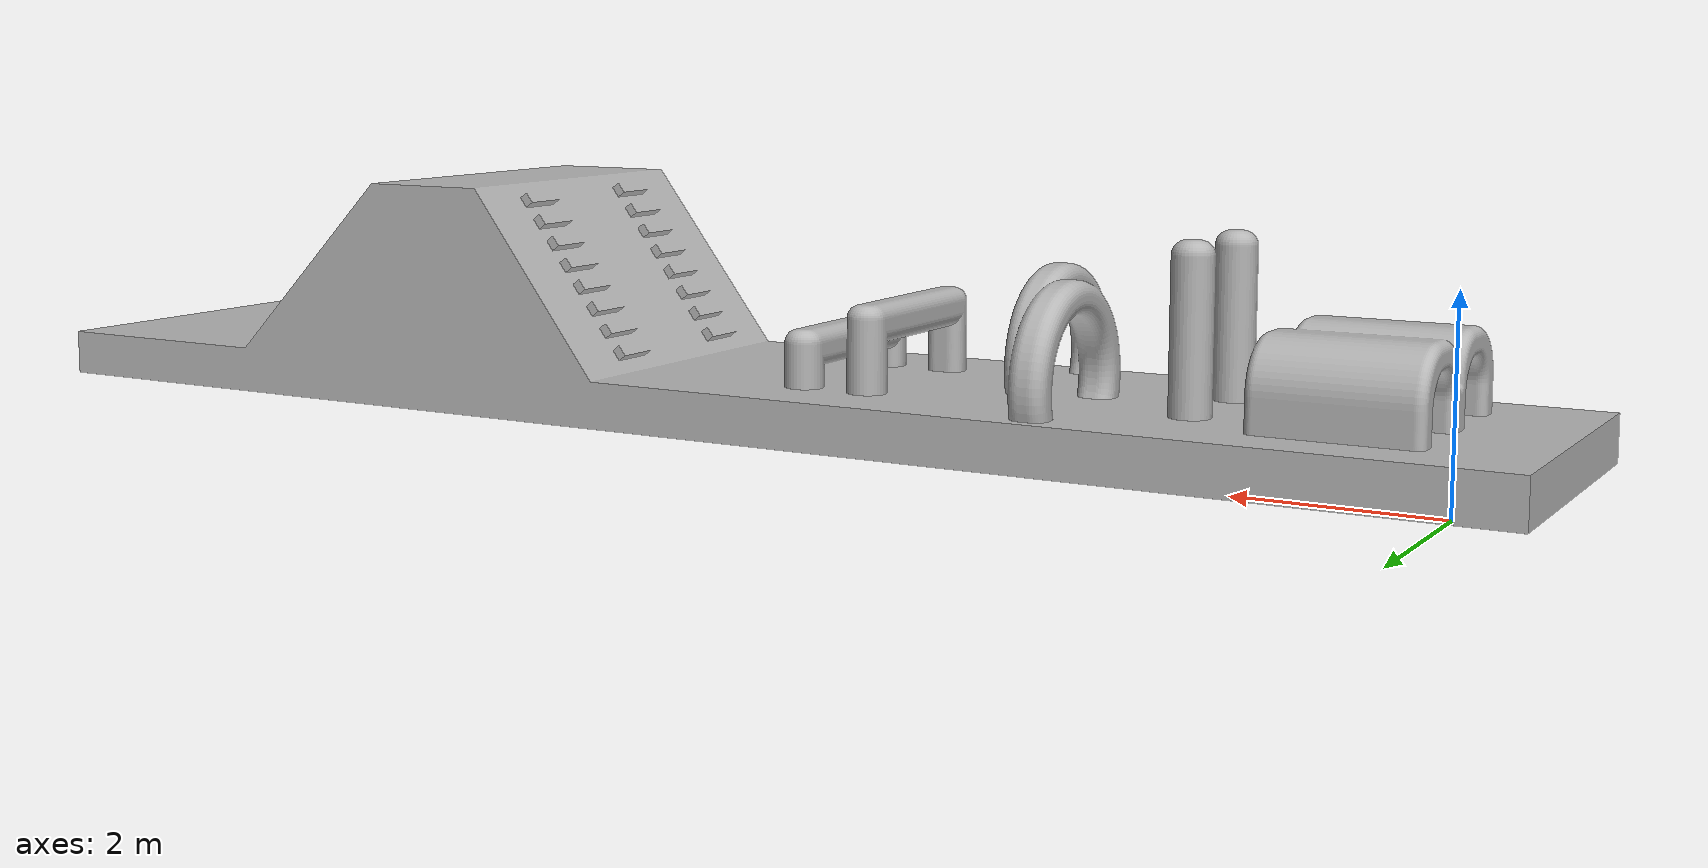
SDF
<?xml version="1.0" ?>
<sdf version="1.6">
  <model name='RoboyParkourTrack'>
    <link name='mesh_link'>
      <visual name='track_visual'>
        <inertial>
         <mass>0.001</mass>
         <!-- inertia based on solid sphere 2/5 mr^2 -->
         <inertia>
           <ixx>1</ixx>
           <iyy>1</iyy>
           <izz>1</izz>
           <ixy>0</ixy>
           <ixz>0</ixz>
           <iyz>0</iyz>
         </inertia>
       </inertial>
        <geometry>
          <mesh>
            <uri>model://RoboyParkourTrack/RoboyParkourChallengeTrack-Simplistic-2019-09-23.stl</uri>
            <scale>0.0001 0.0001 0.0001</scale>
          </mesh>
        </geometry>
      </visual>
      <collision name='track_collision'>
        <geometry>
          <mesh>
            <uri>model://RoboyParkourTrack/RoboyParkourChallengeTrack-Simplistic-2019-09-23.stl</uri>
            <scale>0.0001 0.0001 0.0001</scale>
          </mesh>
        </geometry>
        <surface>
          <friction>
            <ode>
              <mu>1.000000</mu>
              <mu2>1.000000</mu2>
              <fdir1>0.000000 0.000000 0.000000</fdir1>
              <slip1>0.000000</slip1>
              <slip2>0.000000</slip2>
            </ode>
          </friction>
          <bounce>
            <restitution_coefficient>0.0500000</restitution_coefficient>
            <threshold>0.000000</threshold>
          </bounce>
          <contact>
            <ode>
            </ode>
          </contact>
        </surface>
        <max_contacts>1000</max_contacts>
      </collision>
      <self_collide>0</self_collide>
      <inertial>
        <inertia>
          <ixx>1</ixx>
          <ixy>0</ixy>
          <ixz>0</ixz>
          <iyy>1</iyy>
          <iyz>0</iyz>
          <izz>1</izz>
        </inertia>
        <mass>1</mass>
      </inertial>
      <enable_wind>0</enable_wind>
    </link>
    <pose frame=''>-0.675301 0.16219 0 0 -0 0</pose>
  </model>
</sdf>
